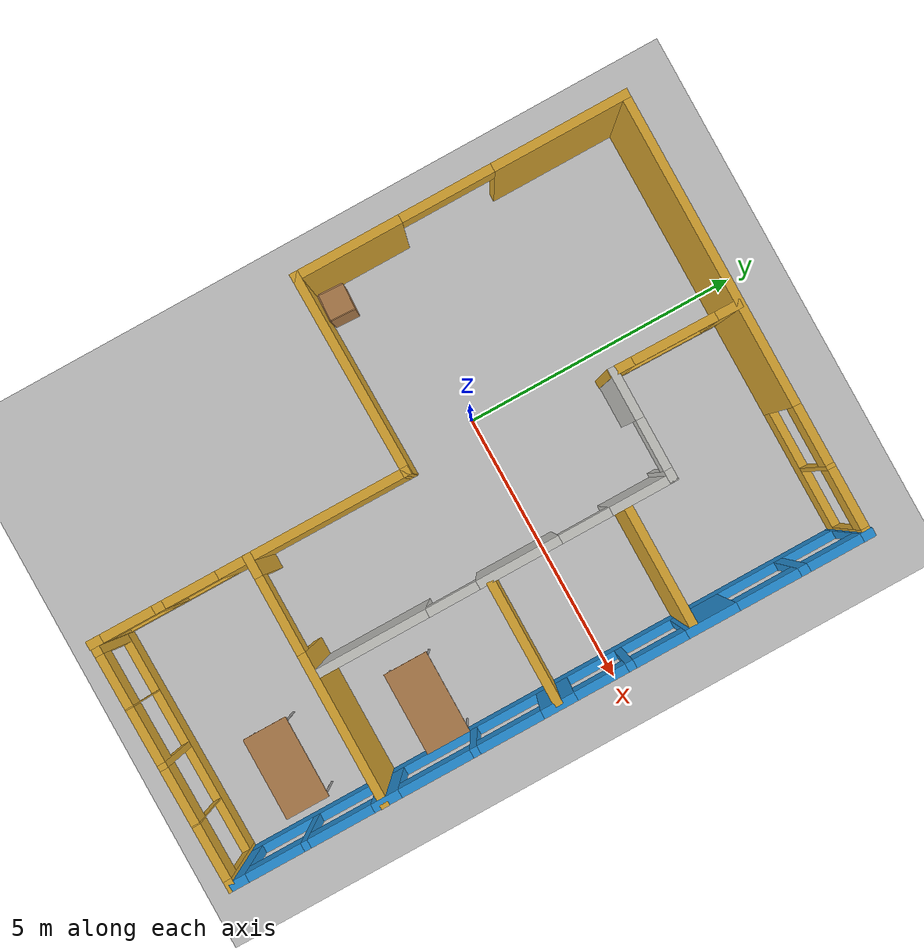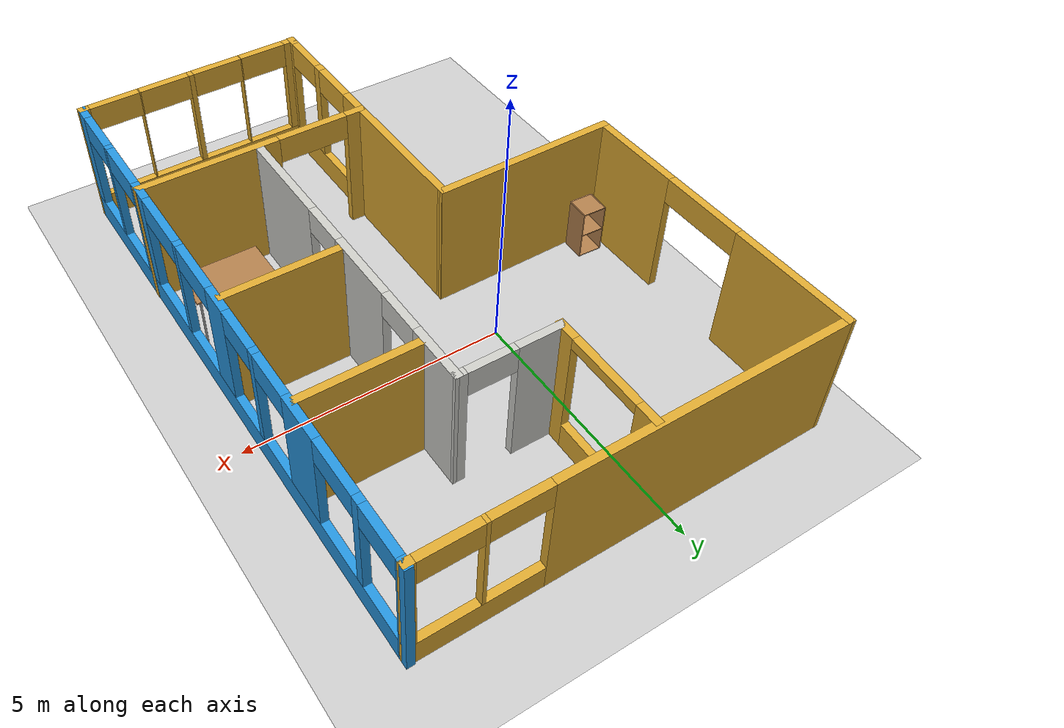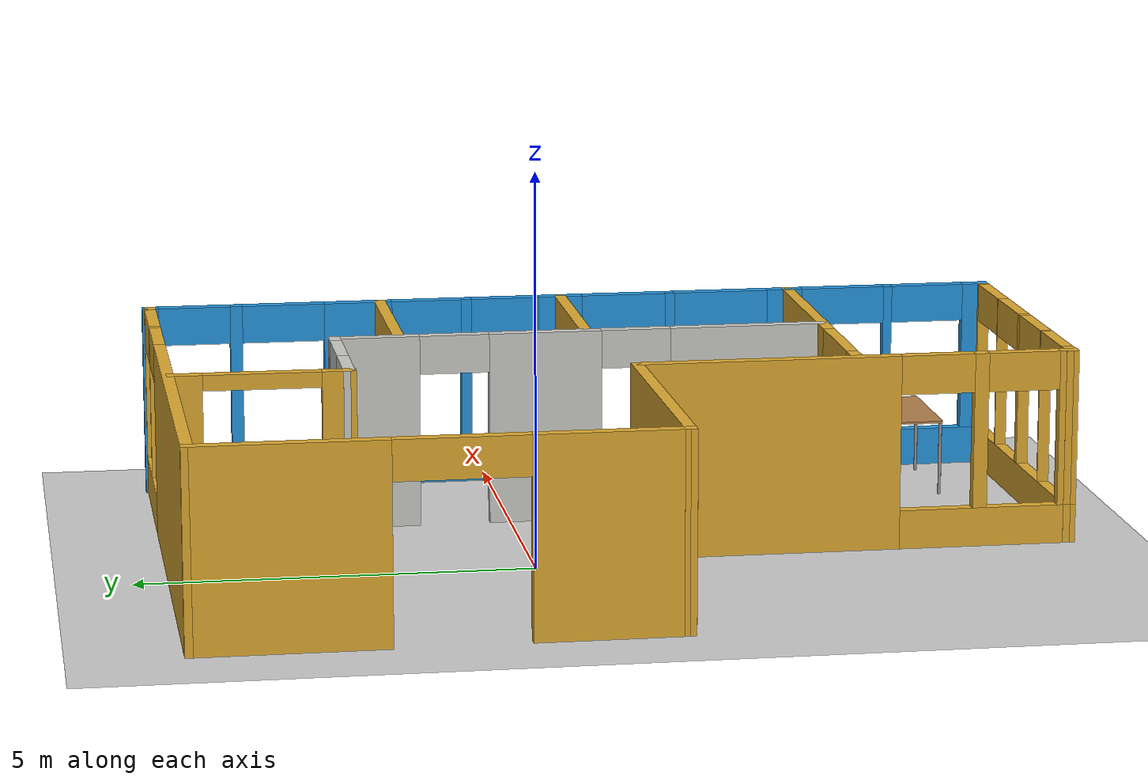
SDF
<sdf version="1.6">
 <world name="default">
  <model name="ground_plane">
   <static>1</static>
   <link name="link">
    <collision name="collision">
     <geometry><plane><normal>0 0 1</normal><size>100 100</size></plane></geometry>
     <surface><friction><ode><mu>100</mu><mu2>50</mu2></ode></friction></surface>
    </collision>
    <visual name="visual">
     <cast_shadows>0</cast_shadows>
     <geometry><plane><normal>0 0 1</normal><size>100 100</size></plane></geometry>
     <material>
      <script><uri>file://media/materials/scripts/gazebo.material</uri><name>Gazebo/Grey</name></script>
     </material>
    </visual>
   </link>
  </model>
  <model name="Office_Space">
   <pose>0.73007 -1.18577 0 0 -0 0</pose>
   <link name="Wall_12">
    <pose>-3.91241 2.75125 0 0 0 -1.5708</pose>
    <visual name="Wall_12_Visual_0">
     <pose>-1.78804 0 1.25 0 -0 0</pose>
     <geometry><box><size>2.42393 0.15 2.5</size></box></geometry>
     <material>
      <script><uri>file://media/materials/scripts/gazebo.material</uri><name>Gazebo/Grey</name></script>
      <ambient>0.870588 0.666667 0.192157 1</ambient>
     </material>
     <meta><layer>0</layer></meta>
    </visual>
    <collision name="Wall_12_Collision_0">
     <geometry><box><size>2.42393 0.15 2.5</size></box></geometry>
     <pose>-1.78804 0 1.25 0 -0 0</pose>
    </collision>
    <visual name="Wall_12_Visual_1">
     <pose>2.03212 0 1.25 0 -0 0</pose>
     <geometry><box><size>1.93575 0.15 2.5</size></box></geometry>
     <material>
      <script><uri>file://media/materials/scripts/gazebo.material</uri><name>Gazebo/Grey</name></script>
      <ambient>0.870588 0.666667 0.192157 1</ambient>
     </material>
     <meta><layer>0</layer></meta>
    </visual>
    <collision name="Wall_12_Collision_1">
     <geometry><box><size>1.93575 0.15 2.5</size></box></geometry>
     <pose>2.03212 0 1.25 0 -0 0</pose>
    </collision>
    <visual name="Wall_12_Visual_2">
     <pose>0.24409 0 2.25 0 -0 0</pose>
     <geometry><box><size>1.64032 0.15 0.5</size></box></geometry>
     <material>
      <script><uri>file://media/materials/scripts/gazebo.material</uri><name>Gazebo/Grey</name></script>
      <ambient>0.870588 0.666667 0.192157 1</ambient>
     </material>
     <meta><layer>0</layer></meta>
    </visual>
    <collision name="Wall_12_Collision_2">
     <geometry><box><size>1.64032 0.15 0.5</size></box></geometry>
     <pose>0.24409 0 2.25 0 -0 0</pose>
    </collision>
   </link>
   <link name="Wall_13">
    <collision name="Wall_13_Collision">
     <geometry><box><size>3.6301 0.15 2.5</size></box></geometry>
     <pose>0 0 1.25 0 -0 0</pose>
    </collision>
    <visual name="Wall_13_Visual">
     <pose>0 0 1.25 0 -0 0</pose>
     <geometry><box><size>3.6301 0.15 2.5</size></box></geometry>
     <material>
      <script><uri>file://media/materials/scripts/gazebo.material</uri><name>Gazebo/Grey</name></script>
      <ambient>0.870588 0.666667 0.192157 1</ambient>
     </material>
     <meta><layer>0</layer></meta>
    </visual>
    <pose>-2.17238 -0.153911 0 0 -0 0.0114</pose>
   </link>
   <link name="Wall_14">
    <pose>-0.438951 -2.92746 0 0 0 -1.57317</pose>
    <visual name="Wall_14_Visual_0">
     <pose>-1.14507 0 1.25 0 -0 0</pose>
     <geometry><box><size>3.4202 0.15 2.5</size></box></geometry>
     <material>
      <script><uri>file://media/materials/scripts/gazebo.material</uri><name>Gazebo/Grey</name></script>
      <ambient>0.870588 0.666667 0.192157 1</ambient>
     </material>
     <meta><layer>0</layer></meta>
    </visual>
    <collision name="Wall_14_Collision_0">
     <geometry><box><size>3.4202 0.15 2.5</size></box></geometry>
     <pose>-1.14507 0 1.25 0 -0 0</pose>
    </collision>
    <visual name="Wall_14_Visual_1">
     <pose>1.7101 0 0.25 0 -0 0</pose>
     <geometry><box><size>2.29014 0.15 0.5</size></box></geometry>
     <material>
      <script><uri>file://media/materials/scripts/gazebo.material</uri><name>Gazebo/Grey</name></script>
      <ambient>0.870588 0.666667 0.192157 1</ambient>
     </material>
     <meta><layer>0</layer></meta>
    </visual>
    <collision name="Wall_14_Collision_1">
     <geometry><box><size>2.29014 0.15 0.5</size></box></geometry>
     <pose>1.7101 0 0.25 0 -0 0</pose>
    </collision>
    <visual name="Wall_14_Visual_2">
     <pose>1.60096 0 1.5 0 -0 0</pose>
     <geometry><box><size>0.181862 0.15 2</size></box></geometry>
     <material>
      <script><uri>file://media/materials/scripts/gazebo.material</uri><name>Gazebo/Grey</name></script>
      <ambient>0.870588 0.666667 0.192157 1</ambient>
     </material>
     <meta><layer>0</layer></meta>
    </visual>
    <collision name="Wall_14_Collision_2">
     <geometry><box><size>0.181862 0.15 2</size></box></geometry>
     <pose>1.60096 0 1.5 0 -0 0</pose>
    </collision>
    <visual name="Wall_14_Visual_3">
     <pose>2.73303 0 1.5 0 -0 0</pose>
     <geometry><box><size>0.244282 0.15 2</size></box></geometry>
     <material>
      <script><uri>file://media/materials/scripts/gazebo.material</uri><name>Gazebo/Grey</name></script>
      <ambient>0.870588 0.666667 0.192157 1</ambient>
     </material>
     <meta><layer>0</layer></meta>
    </visual>
    <collision name="Wall_14_Collision_3">
     <geometry><box><size>0.244282 0.15 2</size></box></geometry>
     <pose>2.73303 0 1.5 0 -0 0</pose>
    </collision>
    <visual name="Wall_14_Visual_4">
     <pose>1.03753 0 2.25 0 -0 0</pose>
     <geometry><box><size>0.945 0.15 0.5</size></box></geometry>
     <material>
      <script><uri>file://media/materials/scripts/gazebo.material</uri><name>Gazebo/Grey</name></script>
      <ambient>0.870588 0.666667 0.192157 1</ambient>
     </material>
     <meta><layer>0</layer></meta>
    </visual>
    <collision name="Wall_14_Collision_4">
     <geometry><box><size>0.945 0.15 0.5</size></box></geometry>
     <pose>1.03753 0 2.25 0 -0 0</pose>
    </collision>
    <visual name="Wall_14_Visual_5">
     <pose>2.15139 0 2.25 0 -0 0</pose>
     <geometry><box><size>0.919 0.15 0.5</size></box></geometry>
     <material>
      <script><uri>file://media/materials/scripts/gazebo.material</uri><name>Gazebo/Grey</name></script>
      <ambient>0.870588 0.666667 0.192157 1</ambient>
     </material>
     <meta><layer>0</layer></meta>
    </visual>
    <collision name="Wall_14_Collision_5">
     <geometry><box><size>0.919 0.15 0.5</size></box></geometry>
     <pose>2.15139 0 2.25 0 -0 0</pose>
    </collision>
   </link>
   <link name="Wall_17">
    <pose>1.65872 0.267561 0 0 0 -1.5708</pose>
    <visual name="Wall_17_Visual_0">
     <pose>-2.66794 0 1.25 0 -0 0</pose>
     <geometry><box><size>1.16412 0.15 2.5</size></box></geometry>
     <material>
      <script><uri>file://media/materials/scripts/gazebo.material</uri><name>Gazebo/CeilingTiled</name></script>
      <ambient>0.870588 0.666667 0.192157 1</ambient>
     </material>
     <meta><layer>0</layer></meta>
    </visual>
    <collision name="Wall_17_Collision_0">
     <geometry><box><size>1.16412 0.15 2.5</size></box></geometry>
     <pose>-2.66794 0 1.25 0 -0 0</pose>
    </collision>
    <visual name="Wall_17_Visual_1">
     <pose>-0.452242 0 1.25 0 -0 0</pose>
     <geometry><box><size>1.46728 0.15 2.5</size></box></geometry>
     <material>
      <script><uri>file://media/materials/scripts/gazebo.material</uri><name>Gazebo/CeilingTiled</name></script>
      <ambient>0.870588 0.666667 0.192157 1</ambient>
     </material>
     <meta><layer>0</layer></meta>
    </visual>
    <collision name="Wall_17_Collision_1">
     <geometry><box><size>1.46728 0.15 2.5</size></box></geometry>
     <pose>-0.452242 0 1.25 0 -0 0</pose>
    </collision>
    <visual name="Wall_17_Visual_2">
     <pose>2.2157 0 1.25 0 -0 0</pose>
     <geometry><box><size>2.0686 0.15 2.5</size></box></geometry>
     <material>
      <script><uri>file://media/materials/scripts/gazebo.material</uri><name>Gazebo/CeilingTiled</name></script>
      <ambient>0.870588 0.666667 0.192157 1</ambient>
     </material>
     <meta><layer>0</layer></meta>
    </visual>
    <collision name="Wall_17_Collision_2">
     <geometry><box><size>2.0686 0.15 2.5</size></box></geometry>
     <pose>2.2157 0 1.25 0 -0 0</pose>
    </collision>
    <visual name="Wall_17_Visual_3">
     <pose>-1.63588 0 2.25 0 -0 0</pose>
     <geometry><box><size>0.9 0.15 0.5</size></box></geometry>
     <material>
      <script><uri>file://media/materials/scripts/gazebo.material</uri><name>Gazebo/CeilingTiled</name></script>
      <ambient>0.870588 0.666667 0.192157 1</ambient>
     </material>
     <meta><layer>0</layer></meta>
    </visual>
    <collision name="Wall_17_Collision_3">
     <geometry><box><size>0.9 0.15 0.5</size></box></geometry>
     <pose>-1.63588 0 2.25 0 -0 0</pose>
    </collision>
    <visual name="Wall_17_Visual_4">
     <pose>0.731395 0 2.25 0 -0 0</pose>
     <geometry><box><size>0.9 0.15 0.5</size></box></geometry>
     <material>
      <script><uri>file://media/materials/scripts/gazebo.material</uri><name>Gazebo/CeilingTiled</name></script>
      <ambient>0.870588 0.666667 0.192157 1</ambient>
     </material>
     <meta><layer>0</layer></meta>
    </visual>
    <collision name="Wall_17_Collision_4">
     <geometry><box><size>0.9 0.15 0.5</size></box></geometry>
     <pose>0.731395 0 2.25 0 -0 0</pose>
    </collision>
   </link>
   <link name="Wall_19">
    <pose>0.714749 3.4432 0 0 -0 3.14092</pose>
    <visual name="Wall_19_Visual_0">
     <pose>-0.907152 0 1.25 0 -0 0</pose>
     <geometry><box><size>0.223647 0.15 2.5</size></box></geometry>
     <material>
      <script><uri>file://media/materials/scripts/gazebo.material</uri><name>Gazebo/CeilingTiled</name></script>
      <ambient>0.870588 0.666667 0.192157 1</ambient>
     </material>
     <meta><layer>0</layer></meta>
    </visual>
    <collision name="Wall_19_Collision_0">
     <geometry><box><size>0.223647 0.15 2.5</size></box></geometry>
     <pose>-0.907152 0 1.25 0 -0 0</pose>
    </collision>
    <visual name="Wall_19_Visual_1">
     <pose>0.561824 0 1.25 0 -0 0</pose>
     <geometry><box><size>0.914303 0.15 2.5</size></box></geometry>
     <material>
      <script><uri>file://media/materials/scripts/gazebo.material</uri><name>Gazebo/CeilingTiled</name></script>
      <ambient>0.870588 0.666667 0.192157 1</ambient>
     </material>
     <meta><layer>0</layer></meta>
    </visual>
    <collision name="Wall_19_Collision_1">
     <geometry><box><size>0.914303 0.15 2.5</size></box></geometry>
     <pose>0.561824 0 1.25 0 -0 0</pose>
    </collision>
    <visual name="Wall_19_Visual_2">
     <pose>-0.345328 0 2.25 0 -0 0</pose>
     <geometry><box><size>0.9 0.15 0.5</size></box></geometry>
     <material>
      <script><uri>file://media/materials/scripts/gazebo.material</uri><name>Gazebo/CeilingTiled</name></script>
      <ambient>0.870588 0.666667 0.192157 1</ambient>
     </material>
     <meta><layer>0</layer></meta>
    </visual>
    <collision name="Wall_19_Collision_2">
     <geometry><box><size>0.9 0.15 0.5</size></box></geometry>
     <pose>-0.345328 0 2.25 0 -0 0</pose>
    </collision>
   </link>
   <link name="Wall_21">
    <pose>-0.216001 4.5269 0 0 -0 1.55873</pose>
    <visual name="Wall_21_Visual_0">
     <pose>-0.958077 0 1.25 0 -0 0</pose>
     <geometry><box><size>0.42658 0.15 2.5</size></box></geometry>
     <material>
      <script><uri>file://media/materials/scripts/gazebo.material</uri><name>Gazebo/Grey</name></script>
      <ambient>0.870588 0.666667 0.192157 1</ambient>
     </material>
     <meta><layer>0</layer></meta>
    </visual>
    <collision name="Wall_21_Collision_0">
     <geometry><box><size>0.42658 0.15 2.5</size></box></geometry>
     <pose>-0.958077 0 1.25 0 -0 0</pose>
    </collision>
    <visual name="Wall_21_Visual_1">
     <pose>0.21329 0 0.25 0 -0 0</pose>
     <geometry><box><size>1.91615 0.15 0.5</size></box></geometry>
     <material>
      <script><uri>file://media/materials/scripts/gazebo.material</uri><name>Gazebo/Grey</name></script>
      <ambient>0.870588 0.666667 0.192157 1</ambient>
     </material>
     <meta><layer>0</layer></meta>
    </visual>
    <collision name="Wall_21_Collision_1">
     <geometry><box><size>1.91615 0.15 0.5</size></box></geometry>
     <pose>0.21329 0 0.25 0 -0 0</pose>
    </collision>
    <visual name="Wall_21_Visual_2">
     <pose>0.95029 0 1.5 0 -0 0</pose>
     <geometry><box><size>0.442154 0.15 2</size></box></geometry>
     <material>
      <script><uri>file://media/materials/scripts/gazebo.material</uri><name>Gazebo/Grey</name></script>
      <ambient>0.870588 0.666667 0.192157 1</ambient>
     </material>
     <meta><layer>0</layer></meta>
    </visual>
    <collision name="Wall_21_Collision_2">
     <geometry><box><size>0.442154 0.15 2</size></box></geometry>
     <pose>0.95029 0 1.5 0 -0 0</pose>
    </collision>
    <visual name="Wall_21_Visual_3">
     <pose>-0.007787 0 2.4 0 -0 0</pose>
     <geometry><box><size>1.474 0.15 0.2</size></box></geometry>
     <material>
      <script><uri>file://media/materials/scripts/gazebo.material</uri><name>Gazebo/Grey</name></script>
      <ambient>0.870588 0.666667 0.192157 1</ambient>
     </material>
     <meta><layer>0</layer></meta>
    </visual>
    <collision name="Wall_21_Collision_3">
     <geometry><box><size>1.474 0.15 0.2</size></box></geometry>
     <pose>-0.007787 0 2.4 0 -0 0</pose>
    </collision>
   </link>
   <link name="Wall_23">
    <collision name="Wall_23_Collision">
     <geometry><box><size>2.25 0.15 2.5</size></box></geometry>
     <pose>0 0 1.25 0 -0 0</pose>
    </collision>
    <visual name="Wall_23_Visual">
     <pose>0 0 1.25 0 -0 0</pose>
     <geometry><box><size>2.25 0.15 2.5</size></box></geometry>
     <material>
      <script><uri>file://media/materials/scripts/gazebo.material</uri><name>Gazebo/Grey</name></script>
      <ambient>0.870588 0.666667 0.192157 1</ambient>
     </material>
     <meta><layer>0</layer></meta>
    </visual>
    <pose>2.82349 2.61759 0 0 -0 0</pose>
   </link>
   <link name="Wall_25">
    <collision name="Wall_25_Collision">
     <geometry><box><size>2.25 0.15 2.5</size></box></geometry>
     <pose>0 0 1.25 0 -0 0</pose>
    </collision>
    <visual name="Wall_25_Visual">
     <pose>0 0 1.25 0 -0 0</pose>
     <geometry><box><size>2.25 0.15 2.5</size></box></geometry>
     <material>
      <script><uri>file://media/materials/scripts/gazebo.material</uri><name>Gazebo/Grey</name></script>
      <ambient>0.870588 0.666667 0.192157 1</ambient>
     </material>
     <meta><layer>0</layer></meta>
    </visual>
    <pose>2.78381 0.18419 0 0 -0 0</pose>
   </link>
   <link name="Wall_27">
    <pose>1.73816 -2.93691 0 0 -0 0</pose>
    <visual name="Wall_27_Visual_0">
     <pose>-2.04254 0 1.25 0 -0 0</pose>
     <geometry><box><size>0.414912 0.15 2.5</size></box></geometry>
     <material>
      <script><uri>file://media/materials/scripts/gazebo.material</uri><name>Gazebo/Grey</name></script>
      <ambient>0.870588 0.666667 0.192157 1</ambient>
     </material>
     <meta><layer>0</layer></meta>
    </visual>
    <collision name="Wall_27_Collision_0">
     <geometry><box><size>0.414912 0.15 2.5</size></box></geometry>
     <pose>-2.04254 0 1.25 0 -0 0</pose>
    </collision>
    <visual name="Wall_27_Visual_1">
     <pose>0.888894 0 1.25 0 -0 0</pose>
     <geometry><box><size>2.72221 0.15 2.5</size></box></geometry>
     <material>
      <script><uri>file://media/materials/scripts/gazebo.material</uri><name>Gazebo/Grey</name></script>
      <ambient>0.870588 0.666667 0.192157 1</ambient>
     </material>
     <meta><layer>0</layer></meta>
    </visual>
    <collision name="Wall_27_Collision_1">
     <geometry><box><size>2.72221 0.15 2.5</size></box></geometry>
     <pose>0.888894 0 1.25 0 -0 0</pose>
    </collision>
    <visual name="Wall_27_Visual_2">
     <pose>-1.15365 0 2.25 0 -0 0</pose>
     <geometry><box><size>1.36288 0.15 0.5</size></box></geometry>
     <material>
      <script><uri>file://media/materials/scripts/gazebo.material</uri><name>Gazebo/Grey</name></script>
      <ambient>0.870588 0.666667 0.192157 1</ambient>
     </material>
     <meta><layer>0</layer></meta>
    </visual>
    <collision name="Wall_27_Collision_2">
     <geometry><box><size>1.36288 0.15 0.5</size></box></geometry>
     <pose>-1.15365 0 2.25 0 -0 0</pose>
    </collision>
   </link>
   <link name="Wall_6">
    <pose>-0.002523 5.6788 0 0 -0 0.000652</pose>
    <visual name="Wall_6_Visual_0">
     <pose>-1.18764 0 1.25 0 -0 0</pose>
     <geometry><box><size>5.5945 0.15 2.5</size></box></geometry>
     <material>
      <script><uri>file://media/materials/scripts/gazebo.material</uri><name>Gazebo/Grey</name></script>
      <ambient>0.870588 0.666667 0.192157 1</ambient>
     </material>
     <meta><layer>0</layer></meta>
    </visual>
    <collision name="Wall_6_Collision_0">
     <geometry><box><size>5.5945 0.15 2.5</size></box></geometry>
     <pose>-1.18764 0 1.25 0 -0 0</pose>
    </collision>
    <visual name="Wall_6_Visual_1">
     <pose>2.79725 0 0.25 0 -0 0</pose>
     <geometry><box><size>2.37528 0.15 0.5</size></box></geometry>
     <material>
      <script><uri>file://media/materials/scripts/gazebo.material</uri><name>Gazebo/Grey</name></script>
      <ambient>0.870588 0.666667 0.192157 1</ambient>
     </material>
     <meta><layer>0</layer></meta>
    </visual>
    <collision name="Wall_6_Collision_1">
     <geometry><box><size>2.37528 0.15 0.5</size></box></geometry>
     <pose>2.79725 0 0.25 0 -0 0</pose>
    </collision>
    <visual name="Wall_6_Visual_2">
     <pose>2.69405 0 1.5 0 -0 0</pose>
     <geometry><box><size>0.068884 0.15 2</size></box></geometry>
     <material>
      <script><uri>file://media/materials/scripts/gazebo.material</uri><name>Gazebo/Grey</name></script>
      <ambient>0.870588 0.666667 0.192157 1</ambient>
     </material>
     <meta><layer>0</layer></meta>
    </visual>
    <collision name="Wall_6_Collision_2">
     <geometry><box><size>0.068884 0.15 2</size></box></geometry>
     <pose>2.69405 0 1.5 0 -0 0</pose>
    </collision>
    <visual name="Wall_6_Visual_3">
     <pose>3.88919 0 1.5 0 -0 0</pose>
     <geometry><box><size>0.191396 0.15 2</size></box></geometry>
     <material>
      <script><uri>file://media/materials/scripts/gazebo.material</uri><name>Gazebo/Grey</name></script>
      <ambient>0.870588 0.666667 0.192157 1</ambient>
     </material>
     <meta><layer>0</layer></meta>
    </visual>
    <collision name="Wall_6_Collision_3">
     <geometry><box><size>0.191396 0.15 2</size></box></geometry>
     <pose>3.88919 0 1.5 0 -0 0</pose>
    </collision>
    <visual name="Wall_6_Visual_4">
     <pose>2.13461 0 2.25 0 -0 0</pose>
     <geometry><box><size>1.05 0.15 0.5</size></box></geometry>
     <material>
      <script><uri>file://media/materials/scripts/gazebo.material</uri><name>Gazebo/Grey</name></script>
      <ambient>0.870588 0.666667 0.192157 1</ambient>
     </material>
     <meta><layer>0</layer></meta>
    </visual>
    <collision name="Wall_6_Collision_4">
     <geometry><box><size>1.05 0.15 0.5</size></box></geometry>
     <pose>2.13461 0 2.25 0 -0 0</pose>
    </collision>
    <visual name="Wall_6_Visual_5">
     <pose>3.26099 0 2.25 0 -0 0</pose>
     <geometry><box><size>1.065 0.15 0.5</size></box></geometry>
     <material>
      <script><uri>file://media/materials/scripts/gazebo.material</uri><name>Gazebo/Grey</name></script>
      <ambient>0.870588 0.666667 0.192157 1</ambient>
     </material>
     <meta><layer>0</layer></meta>
    </visual>
    <collision name="Wall_6_Collision_5">
     <geometry><box><size>1.065 0.15 0.5</size></box></geometry>
     <pose>3.26099 0 2.25 0 -0 0</pose>
    </collision>
   </link>
   <link name="Wall_7">
    <pose>3.90736 0.032801 0 0 0 -1.5708</pose>
    <visual name="Wall_7_Visual_0">
     <pose>-5.64293 0 1.25 0 -0 0</pose>
     <geometry><box><size>0.214146 0.15 2.5</size></box></geometry>
     <material>
      <script><uri>file://media/materials/scripts/gazebo.material</uri><name>Gazebo/Grey</name></script>
      <ambient>0.14902 0.584314 0.870588 1</ambient>
     </material>
     <meta><layer>0</layer></meta>
    </visual>
    <collision name="Wall_7_Collision_0">
     <geometry><box><size>0.214146 0.15 2.5</size></box></geometry>
     <pose>-5.64293 0 1.25 0 -0 0</pose>
    </collision>
    <visual name="Wall_7_Visual_1">
     <pose>0.107073 0 0.25 0 -0 0</pose>
     <geometry><box><size>11.2859 0.15 0.5</size></box></geometry>
     <material>
      <script><uri>file://media/materials/scripts/gazebo.material</uri><name>Gazebo/Grey</name></script>
      <ambient>0.14902 0.584314 0.870588 1</ambient>
     </material>
     <meta><layer>0</layer></meta>
    </visual>
    <collision name="Wall_7_Collision_1">
     <geometry><box><size>11.2859 0.15 0.5</size></box></geometry>
     <pose>0.107073 0 0.25 0 -0 0</pose>
    </collision>
    <visual name="Wall_7_Visual_2">
     <pose>-4.50853 0 1.5 0 -0 0</pose>
     <geometry><box><size>0.162645 0.15 2</size></box></geometry>
     <material>
      <script><uri>file://media/materials/scripts/gazebo.material</uri><name>Gazebo/Grey</name></script>
      <ambient>0.14902 0.584314 0.870588 1</ambient>
     </material>
     <meta><layer>0</layer></meta>
    </visual>
    <collision name="Wall_7_Collision_2">
     <geometry><box><size>0.162645 0.15 2</size></box></geometry>
     <pose>-4.50853 0 1.5 0 -0 0</pose>
    </collision>
    <visual name="Wall_7_Visual_3">
     <pose>-2.88275 0 1.5 0 -0 0</pose>
     <geometry><box><size>0.907069 0.15 2</size></box></geometry>
     <material>
      <script><uri>file://media/materials/scripts/gazebo.material</uri><name>Gazebo/Grey</name></script>
      <ambient>0.14902 0.584314 0.870588 1</ambient>
     </material>
     <meta><layer>0</layer></meta>
    </visual>
    <collision name="Wall_7_Collision_3">
     <geometry><box><size>0.907069 0.15 2</size></box></geometry>
     <pose>-2.88275 0 1.5 0 -0 0</pose>
    </collision>
    <visual name="Wall_7_Visual_4">
     <pose>-1.42771 0 1.5 0 -0 0</pose>
     <geometry><box><size>0.139 0.15 2</size></box></geometry>
     <material>
      <script><uri>file://media/materials/scripts/gazebo.material</uri><name>Gazebo/Grey</name></script>
      <ambient>0.14902 0.584314 0.870588 1</ambient>
     </material>
     <meta><layer>0</layer></meta>
    </visual>
    <collision name="Wall_7_Collision_4">
     <geometry><box><size>0.139 0.15 2</size></box></geometry>
     <pose>-1.42771 0 1.5 0 -0 0</pose>
    </collision>
    <visual name="Wall_7_Visual_5">
     <pose>-0.154727 0 1.5 0 -0 0</pose>
     <geometry><box><size>0.594975 0.15 2</size></box></geometry>
     <material>
      <script><uri>file://media/materials/scripts/gazebo.material</uri><name>Gazebo/Grey</name></script>
      <ambient>0.14902 0.584314 0.870588 1</ambient>
     </material>
     <meta><layer>0</layer></meta>
    </visual>
    <collision name="Wall_7_Collision_5">
     <geometry><box><size>0.594975 0.15 2</size></box></geometry>
     <pose>-0.154727 0 1.5 0 -0 0</pose>
    </collision>
    <visual name="Wall_7_Visual_6">
     <pose>1.33715 0 1.5 0 -0 0</pose>
     <geometry><box><size>0.126875 0.15 2</size></box></geometry>
     <material>
      <script><uri>file://media/materials/scripts/gazebo.material</uri><name>Gazebo/Grey</name></script>
      <ambient>0.14902 0.584314 0.870588 1</ambient>
     </material>
     <meta><layer>0</layer></meta>
    </visual>
    <collision name="Wall_7_Collision_6">
     <geometry><box><size>0.126875 0.15 2</size></box></geometry>
     <pose>1.33715 0 1.5 0 -0 0</pose>
    </collision>
    <visual name="Wall_7_Visual_7">
     <pose>2.91697 0 1.5 0 -0 0</pose>
     <geometry><box><size>0.485725 0.15 2</size></box></geometry>
     <material>
      <script><uri>file://media/materials/scripts/gazebo.material</uri><name>Gazebo/Grey</name></script>
      <ambient>0.14902 0.584314 0.870588 1</ambient>
     </material>
     <meta><layer>0</layer></meta>
    </visual>
    <collision name="Wall_7_Collision_7">
     <geometry><box><size>0.485725 0.15 2</size></box></geometry>
     <pose>2.91697 0 1.5 0 -0 0</pose>
    </collision>
    <visual name="Wall_7_Visual_8">
     <pose>4.3453 0 1.5 0 -0 0</pose>
     <geometry><box><size>0.116119 0.15 2</size></box></geometry>
     <material>
      <script><uri>file://media/materials/scripts/gazebo.material</uri><name>Gazebo/Grey</name></script>
      <ambient>0.14902 0.584314 0.870588 1</ambient>
     </material>
     <meta><layer>0</layer></meta>
    </visual>
    <collision name="Wall_7_Collision_8">
     <geometry><box><size>0.116119 0.15 2</size></box></geometry>
     <pose>4.3453 0 1.5 0 -0 0</pose>
    </collision>
    <visual name="Wall_7_Visual_9">
     <pose>5.56918 0 1.5 0 -0 0</pose>
     <geometry><box><size>0.361645 0.15 2</size></box></geometry>
     <material>
      <script><uri>file://media/materials/scripts/gazebo.material</uri><name>Gazebo/Grey</name></script>
      <ambient>0.14902 0.584314 0.870588 1</ambient>
     </material>
     <meta><layer>0</layer></meta>
    </visual>
    <collision name="Wall_7_Collision_9">
     <geometry><box><size>0.361645 0.15 2</size></box></geometry>
     <pose>5.56918 0 1.5 0 -0 0</pose>
    </collision>
    <visual name="Wall_7_Visual_10">
     <pose>-5.06285 0 2.25 0 -0 0</pose>
     <geometry><box><size>0.946 0.15 0.5</size></box></geometry>
     <material>
      <script><uri>file://media/materials/scripts/gazebo.material</uri><name>Gazebo/Grey</name></script>
      <ambient>0.14902 0.584314 0.870588 1</ambient>
     </material>
     <meta><layer>0</layer></meta>
    </visual>
    <collision name="Wall_7_Collision_10">
     <geometry><box><size>0.946 0.15 0.5</size></box></geometry>
     <pose>-5.06285 0 2.25 0 -0 0</pose>
    </collision>
    <visual name="Wall_7_Visual_11">
     <pose>-3.88175 0 2.25 0 -0 0</pose>
     <geometry><box><size>1.09093 0.15 0.5</size></box></geometry>
     <material>
      <script><uri>file://media/materials/scripts/gazebo.material</uri><name>Gazebo/Grey</name></script>
      <ambient>0.14902 0.584314 0.870588 1</ambient>
     </material>
     <meta><layer>0</layer></meta>
    </visual>
    <collision name="Wall_7_Collision_11">
     <geometry><box><size>1.09093 0.15 0.5</size></box></geometry>
     <pose>-3.88175 0 2.25 0 -0 0</pose>
    </collision>
    <visual name="Wall_7_Visual_12">
     <pose>-1.96321 0 2.25 0 -0 0</pose>
     <geometry><box><size>0.932 0.15 0.5</size></box></geometry>
     <material>
      <script><uri>file://media/materials/scripts/gazebo.material</uri><name>Gazebo/Grey</name></script>
      <ambient>0.14902 0.584314 0.870588 1</ambient>
     </material>
     <meta><layer>0</layer></meta>
    </visual>
    <collision name="Wall_7_Collision_12">
     <geometry><box><size>0.932 0.15 0.5</size></box></geometry>
     <pose>-1.96321 0 2.25 0 -0 0</pose>
    </collision>
    <visual name="Wall_7_Visual_13">
     <pose>-0.905214 0 2.25 0 -0 0</pose>
     <geometry><box><size>0.906 0.15 0.5</size></box></geometry>
     <material>
      <script><uri>file://media/materials/scripts/gazebo.material</uri><name>Gazebo/Grey</name></script>
      <ambient>0.14902 0.584314 0.870588 1</ambient>
     </material>
     <meta><layer>0</layer></meta>
    </visual>
    <collision name="Wall_7_Collision_13">
     <geometry><box><size>0.906 0.15 0.5</size></box></geometry>
     <pose>-0.905214 0 2.25 0 -0 0</pose>
    </collision>
    <visual name="Wall_7_Visual_14">
     <pose>0.708236 0 2.25 0 -0 0</pose>
     <geometry><box><size>1.13095 0.15 0.5</size></box></geometry>
     <material>
      <script><uri>file://media/materials/scripts/gazebo.material</uri><name>Gazebo/Grey</name></script>
      <ambient>0.14902 0.584314 0.870588 1</ambient>
     </material>
     <meta><layer>0</layer></meta>
    </visual>
    <collision name="Wall_7_Collision_14">
     <geometry><box><size>1.13095 0.15 0.5</size></box></geometry>
     <pose>0.708236 0 2.25 0 -0 0</pose>
    </collision>
    <visual name="Wall_7_Visual_15">
     <pose>2.03735 0 2.25 0 -0 0</pose>
     <geometry><box><size>1.27353 0.15 0.5</size></box></geometry>
     <material>
      <script><uri>file://media/materials/scripts/gazebo.material</uri><name>Gazebo/Grey</name></script>
      <ambient>0.14902 0.584314 0.870588 1</ambient>
     </material>
     <meta><layer>0</layer></meta>
    </visual>
    <collision name="Wall_7_Collision_15">
     <geometry><box><size>1.27353 0.15 0.5</size></box></geometry>
     <pose>2.03735 0 2.25 0 -0 0</pose>
    </collision>
    <visual name="Wall_7_Visual_16">
     <pose>3.72354 0 2.25 0 -0 0</pose>
     <geometry><box><size>1.1274 0.15 0.5</size></box></geometry>
     <material>
      <script><uri>file://media/materials/scripts/gazebo.material</uri><name>Gazebo/Grey</name></script>
      <ambient>0.14902 0.584314 0.870588 1</ambient>
     </material>
     <meta><layer>0</layer></meta>
    </visual>
    <collision name="Wall_7_Collision_16">
     <geometry><box><size>1.1274 0.15 0.5</size></box></geometry>
     <pose>3.72354 0 2.25 0 -0 0</pose>
    </collision>
    <visual name="Wall_7_Visual_17">
     <pose>4.89586 0 2.25 0 -0 0</pose>
     <geometry><box><size>0.985 0.15 0.5</size></box></geometry>
     <material>
      <script><uri>file://media/materials/scripts/gazebo.material</uri><name>Gazebo/Grey</name></script>
      <ambient>0.14902 0.584314 0.870588 1</ambient>
     </material>
     <meta><layer>0</layer></meta>
    </visual>
    <collision name="Wall_7_Collision_17">
     <geometry><box><size>0.985 0.15 0.5</size></box></geometry>
     <pose>4.89586 0 2.25 0 -0 0</pose>
    </collision>
   </link>
   <link name="Wall_8">
    <pose>1.7309 -5.6683 0 0 0 -3.1296</pose>
    <visual name="Wall_8_Visual_0">
     <pose>-2.15255 0 1.25 0 -0 0</pose>
     <geometry><box><size>0.198543 0.15 2.5</size></box></geometry>
     <material>
      <script><uri>file://media/materials/scripts/gazebo.material</uri><name>Gazebo/Grey</name></script>
      <ambient>0.870588 0.666667 0.192157 1</ambient>
     </material>
     <meta><layer>0</layer></meta>
    </visual>
    <collision name="Wall_8_Collision_0">
     <geometry><box><size>0.198543 0.15 2.5</size></box></geometry>
     <pose>-2.15255 0 1.25 0 -0 0</pose>
    </collision>
    <visual name="Wall_8_Visual_1">
     <pose>0.099272 0 0.25 0 -0 0</pose>
     <geometry><box><size>4.30509 0.15 0.5</size></box></geometry>
     <material>
      <script><uri>file://media/materials/scripts/gazebo.material</uri><name>Gazebo/Grey</name></script>
      <ambient>0.870588 0.666667 0.192157 1</ambient>
     </material>
     <meta><layer>0</layer></meta>
    </visual>
    <collision name="Wall_8_Collision_1">
     <geometry><box><size>4.30509 0.15 0.5</size></box></geometry>
     <pose>0.099272 0 0.25 0 -0 0</pose>
    </collision>
    <visual name="Wall_8_Visual_2">
     <pose>-1.07091 0 1.5 0 -0 0</pose>
     <geometry><box><size>0.020731 0.15 2</size></box></geometry>
     <material>
      <script><uri>file://media/materials/scripts/gazebo.material</uri><name>Gazebo/Grey</name></script>
      <ambient>0.870588 0.666667 0.192157 1</ambient>
     </material>
     <meta><layer>0</layer></meta>
    </visual>
    <collision name="Wall_8_Collision_2">
     <geometry><box><size>0.020731 0.15 2</size></box></geometry>
     <pose>-1.07091 0 1.5 0 -0 0</pose>
    </collision>
    <visual name="Wall_8_Visual_3">
     <pose>-0.025415 0 1.5 0 -0 0</pose>
     <geometry><box><size>0.100258 0.15 2</size></box></geometry>
     <material>
      <script><uri>file://media/materials/scripts/gazebo.material</uri><name>Gazebo/Grey</name></script>
      <ambient>0.870588 0.666667 0.192157 1</ambient>
     </material>
     <meta><layer>0</layer></meta>
    </visual>
    <collision name="Wall_8_Collision_3">
     <geometry><box><size>0.100258 0.15 2</size></box></geometry>
     <pose>-0.025415 0 1.5 0 -0 0</pose>
    </collision>
    <visual name="Wall_8_Visual_4">
     <pose>1.02065 0 1.5 0 -0 0</pose>
     <geometry><box><size>0.021879 0.15 2</size></box></geometry>
     <material>
      <script><uri>file://media/materials/scripts/gazebo.material</uri><name>Gazebo/Grey</name></script>
      <ambient>0.870588 0.666667 0.192157 1</ambient>
     </material>
     <meta><layer>0</layer></meta>
    </visual>
    <collision name="Wall_8_Collision_4">
     <geometry><box><size>0.021879 0.15 2</size></box></geometry>
     <pose>1.02065 0 1.5 0 -0 0</pose>
    </collision>
    <visual name="Wall_8_Visual_5">
     <pose>2.10671 0 1.5 0 -0 0</pose>
     <geometry><box><size>0.290226 0.15 2</size></box></geometry>
     <material>
      <script><uri>file://media/materials/scripts/gazebo.material</uri><name>Gazebo/Grey</name></script>
      <ambient>0.870588 0.666667 0.192157 1</ambient>
     </material>
     <meta><layer>0</layer></meta>
    </visual>
    <collision name="Wall_8_Collision_5">
     <geometry><box><size>0.290226 0.15 2</size></box></geometry>
     <pose>2.10671 0 1.5 0 -0 0</pose>
    </collision>
    <visual name="Wall_8_Visual_6">
     <pose>-1.56728 0 2.25 0 -0 0</pose>
     <geometry><box><size>0.972 0.15 0.5</size></box></geometry>
     <material>
      <script><uri>file://media/materials/scripts/gazebo.material</uri><name>Gazebo/Grey</name></script>
      <ambient>0.870588 0.666667 0.192157 1</ambient>
     </material>
     <meta><layer>0</layer></meta>
    </visual>
    <collision name="Wall_8_Collision_6">
     <geometry><box><size>0.972 0.15 0.5</size></box></geometry>
     <pose>-1.56728 0 2.25 0 -0 0</pose>
    </collision>
    <visual name="Wall_8_Visual_7">
     <pose>-0.568044 0 2.25 0 -0 0</pose>
     <geometry><box><size>0.985 0.15 0.5</size></box></geometry>
     <material>
      <script><uri>file://media/materials/scripts/gazebo.material</uri><name>Gazebo/Grey</name></script>
      <ambient>0.870588 0.666667 0.192157 1</ambient>
     </material>
     <meta><layer>0</layer></meta>
    </visual>
    <collision name="Wall_8_Collision_7">
     <geometry><box><size>0.985 0.15 0.5</size></box></geometry>
     <pose>-0.568044 0 2.25 0 -0 0</pose>
    </collision>
    <visual name="Wall_8_Visual_8">
     <pose>0.517214 0 2.25 0 -0 0</pose>
     <geometry><box><size>0.985 0.15 0.5</size></box></geometry>
     <material>
      <script><uri>file://media/materials/scripts/gazebo.material</uri><name>Gazebo/Grey</name></script>
      <ambient>0.870588 0.666667 0.192157 1</ambient>
     </material>
     <meta><layer>0</layer></meta>
    </visual>
    <collision name="Wall_8_Collision_8">
     <geometry><box><size>0.985 0.15 0.5</size></box></geometry>
     <pose>0.517214 0 2.25 0 -0 0</pose>
    </collision>
    <visual name="Wall_8_Visual_9">
     <pose>1.49659 0 2.25 0 -0 0</pose>
     <geometry><box><size>0.93 0.15 0.5</size></box></geometry>
     <material>
      <script><uri>file://media/materials/scripts/gazebo.material</uri><name>Gazebo/Grey</name></script>
      <ambient>0.870588 0.666667 0.192157 1</ambient>
     </material>
     <meta><layer>0</layer></meta>
    </visual>
    <collision name="Wall_8_Collision_9">
     <geometry><box><size>0.93 0.15 0.5</size></box></geometry>
     <pose>1.49659 0 2.25 0 -0 0</pose>
    </collision>
   </link>
   <static>1</static>
  </model>
  <model name="cabinet">
   <static>1</static>
   <link name="cabinet_bottom_plate">
    <inertial>
     <pose>0 0 -1 0 -0 0</pose>
     <inertia><ixx>2.05</ixx><ixy>0</ixy><ixz>0</ixz><iyy>2.05</iyy><iyz>0</iyz><izz>2.05</izz></inertia>
     <mass>25</mass>
    </inertial>
    <collision name="cabinet_bottom_plate_geom">
     <pose>0 0 0.01 0 -0 0</pose>
     <geometry><box><size>0.45 0.45 0.02</size></box></geometry>
    </collision>
    <visual name="cabinet_bottom_plate_geom_visual">
     <pose>0 0 0.01 0 -0 0</pose>
     <geometry><box><size>0.45 0.45 0.02</size></box></geometry>
     <material>
      <script><uri>file://media/materials/scripts/gazebo.material</uri><name>Gazebo/Wood</name></script>
     </material>
    </visual>
    <collision name="cabinet_bottom_plate_geom_cabinet_back_plate">
     <pose>0.235 0 0.51 0 -0 0</pose>
     <geometry><box><size>0.02 0.45 1.02</size></box></geometry>
    </collision>
    <visual name="cabinet_bottom_plate_geom_cabinet_back_plate_visual">
     <pose>0.235 0 0.51 0 -0 0</pose>
     <geometry><box><size>0.02 0.45 1.02</size></box></geometry>
     <material>
      <script><uri>file://media/materials/scripts/gazebo.material</uri><name>Gazebo/Wood</name></script>
     </material>
    </visual>
    <collision name="cabinet_bottom_plate_geom_cabinet_left_plate">
     <pose>0 0.235 0.51 0 -0 0</pose>
     <geometry><box><size>0.45 0.02 1.02</size></box></geometry>
    </collision>
    <visual name="cabinet_bottom_plate_geom_cabinet_left_plate_visual">
     <pose>0 0.235 0.51 0 -0 0</pose>
     <geometry><box><size>0.45 0.02 1.02</size></box></geometry>
     <material>
      <script><uri>file://media/materials/scripts/gazebo.material</uri><name>Gazebo/Wood</name></script>
     </material>
    </visual>
    <collision name="cabinet_bottom_plate_geom_cabinet_middle_plate">
     <pose>0 0 0.51 0 -0 0</pose>
     <geometry><box><size>0.45 0.45 0.02</size></box></geometry>
    </collision>
    <visual name="cabinet_bottom_plate_geom_cabinet_middle_plate_visual">
     <pose>0 0 0.51 0 -0 0</pose>
     <geometry><box><size>0.45 0.45 0.02</size></box></geometry>
     <material>
      <script><uri>file://media/materials/scripts/gazebo.material</uri><name>Gazebo/Wood</name></script>
     </material>
    </visual>
    <collision name="cabinet_bottom_plate_geom_cabinet_right_plate">
     <pose>0 -0.235 0.51 0 -0 0</pose>
     <geometry><box><size>0.45 0.02 1.02</size></box></geometry>
    </collision>
    <visual name="cabinet_bottom_plate_geom_cabinet_right_plate_visual">
     <pose>0 -0.235 0.51 0 -0 0</pose>
     <geometry><box><size>0.45 0.02 1.02</size></box></geometry>
     <material>
      <script><uri>file://media/materials/scripts/gazebo.material</uri><name>Gazebo/Wood</name></script>
     </material>
    </visual>
    <collision name="cabinet_bottom_plate_geom_cabinet_top_plate">
     <pose>0 0 1.01 0 -0 0</pose>
     <geometry><box><size>0.45 0.45 0.02</size></box></geometry>
    </collision>
    <visual name="cabinet_bottom_plate_geom_cabinet_top_plate_visual">
     <pose>0 0 1.01 0 -0 0</pose>
     <geometry><box><size>0.45 0.45 0.02</size></box></geometry>
     <material>
      <script><uri>file://media/materials/scripts/gazebo.material</uri><name>Gazebo/Wood</name></script>
     </material>
    </visual>
   </link>
   <pose>-2.74866 -1.02239 0 0 0 -1.61952</pose>
  </model>
  <model name="table_1">
   <static>1</static>
   <link name="link">
    <collision name="surface">
     <pose>0 0 1 0 -0 0</pose>
     <geometry><box><size>1.5 0.8 0.03</size></box></geometry>
     <surface><friction><ode><mu>0.6</mu><mu2>0.6</mu2></ode></friction></surface>
    </collision>
    <visual name="visual1">
     <pose>0 0 1 0 -0 0</pose>
     <geometry><box><size>1.5 0.8 0.03</size></box></geometry>
     <material>
      <script><uri>file://media/materials/scripts/gazebo.material</uri><name>Gazebo/Wood</name></script>
     </material>
    </visual>
    <collision name="front_left_leg">
     <pose>0.68 0.38 0.5 0 -0 0</pose>
     <geometry><cylinder><radius>0.02</radius><length>1</length></cylinder></geometry>
    </collision>
    <visual name="front_left_leg">
     <pose>0.68 0.38 0.5 0 -0 0</pose>
     <geometry><cylinder><radius>0.02</radius><length>1</length></cylinder></geometry>
     <material>
      <script><uri>file://media/materials/scripts/gazebo.material</uri><name>Gazebo/Grey</name></script>
     </material>
    </visual>
    <collision name="front_right_leg">
     <pose>0.68 -0.38 0.5 0 -0 0</pose>
     <geometry><cylinder><radius>0.02</radius><length>1</length></cylinder></geometry>
    </collision>
    <visual name="front_right_leg">
     <pose>0.68 -0.38 0.5 0 -0 0</pose>
     <geometry><cylinder><radius>0.02</radius><length>1</length></cylinder></geometry>
     <material>
      <script><uri>file://media/materials/scripts/gazebo.material</uri><name>Gazebo/Grey</name></script>
     </material>
    </visual>
    <collision name="back_right_leg">
     <pose>-0.68 -0.38 0.5 0 -0 0</pose>
     <geometry><cylinder><radius>0.02</radius><length>1</length></cylinder></geometry>
    </collision>
    <visual name="back_right_leg">
     <pose>-0.68 -0.38 0.5 0 -0 0</pose>
     <geometry><cylinder><radius>0.02</radius><length>1</length></cylinder></geometry>
     <material>
      <script><uri>file://media/materials/scripts/gazebo.material</uri><name>Gazebo/Grey</name></script>
     </material>
    </visual>
    <collision name="back_left_leg">
     <pose>-0.68 0.38 0.5 0 -0 0</pose>
     <geometry><cylinder><radius>0.02</radius><length>1</length></cylinder></geometry>
    </collision>
    <visual name="back_left_leg">
     <pose>-0.68 0.38 0.5 0 -0 0</pose>
     <geometry><cylinder><radius>0.02</radius><length>1</length></cylinder></geometry>
     <material>
      <script><uri>file://media/materials/scripts/gazebo.material</uri><name>Gazebo/Grey</name></script>
     </material>
    </visual>
   </link>
   <pose>3.75589 -2.92152 0 0 -0 0</pose>
  </model>
  <model name="table_2">
   <static>1</static>
   <link name="link">
    <collision name="surface">
     <pose>0 0 1 0 -0 0</pose>
     <geometry><box><size>1.5 0.8 0.03</size></box></geometry>
     <surface><friction><ode><mu>0.6</mu><mu2>0.6</mu2></ode></friction></surface>
    </collision>
    <visual name="visual1">
     <pose>0 0 1 0 -0 0</pose>
     <geometry><box><size>1.5 0.8 0.03</size></box></geometry>
     <material>
      <script><uri>file://media/materials/scripts/gazebo.material</uri><name>Gazebo/Wood</name></script>
     </material>
    </visual>
    <collision name="front_left_leg">
     <pose>0.68 0.38 0.5 0 -0 0</pose>
     <geometry><cylinder><radius>0.02</radius><length>1</length></cylinder></geometry>
    </collision>
    <visual name="front_left_leg">
     <pose>0.68 0.38 0.5 0 -0 0</pose>
     <geometry><cylinder><radius>0.02</radius><length>1</length></cylinder></geometry>
     <material>
      <script><uri>file://media/materials/scripts/gazebo.material</uri><name>Gazebo/Grey</name></script>
     </material>
    </visual>
    <collision name="front_right_leg">
     <pose>0.68 -0.38 0.5 0 -0 0</pose>
     <geometry><cylinder><radius>0.02</radius><length>1</length></cylinder></geometry>
    </collision>
    <visual name="front_right_leg">
     <pose>0.68 -0.38 0.5 0 -0 0</pose>
     <geometry><cylinder><radius>0.02</radius><length>1</length></cylinder></geometry>
     <material>
      <script><uri>file://media/materials/scripts/gazebo.material</uri><name>Gazebo/Grey</name></script>
     </material>
    </visual>
    <collision name="back_right_leg">
     <pose>-0.68 -0.38 0.5 0 -0 0</pose>
     <geometry><cylinder><radius>0.02</radius><length>1</length></cylinder></geometry>
    </collision>
    <visual name="back_right_leg">
     <pose>-0.68 -0.38 0.5 0 -0 0</pose>
     <geometry><cylinder><radius>0.02</radius><length>1</length></cylinder></geometry>
     <material>
      <script><uri>file://media/materials/scripts/gazebo.material</uri><name>Gazebo/Grey</name></script>
     </material>
    </visual>
    <collision name="back_left_leg">
     <pose>-0.68 0.38 0.5 0 -0 0</pose>
     <geometry><cylinder><radius>0.02</radius><length>1</length></cylinder></geometry>
    </collision>
    <visual name="back_left_leg">
     <pose>-0.68 0.38 0.5 0 -0 0</pose>
     <geometry><cylinder><radius>0.02</radius><length>1</length></cylinder></geometry>
     <material>
      <script><uri>file://media/materials/scripts/gazebo.material</uri><name>Gazebo/Grey</name></script>
     </material>
    </visual>
   </link>
   <pose>3.572 -5.47161 0 0 -0 0</pose>
  </model>
 </world>
</sdf>
